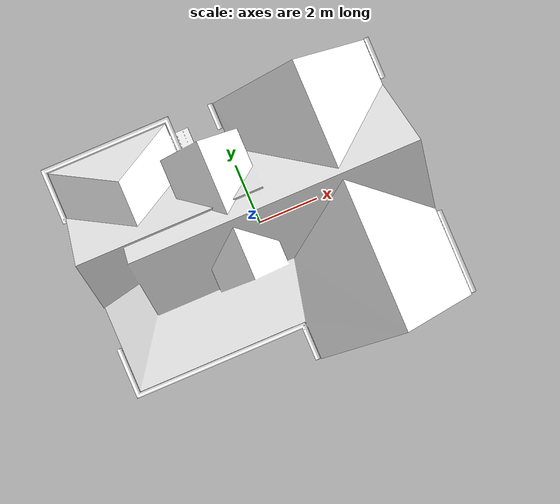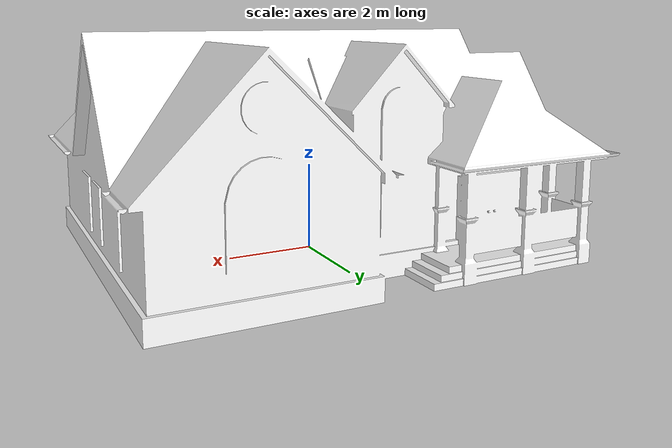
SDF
<?xml version="1.0"?>
<sdf version="1.4">
  <model name="House 1">
    <static>true</static>
    <link name="link">
      <collision name="collision">
        <geometry>
          <mesh>
            <uri>model://house_1/meshes/house_1.dae</uri>
          </mesh>
        </geometry>
      </collision>
      <visual name="visual">
        <geometry>
          <mesh>
            <uri>model://house_1/meshes/house_1.dae</uri>
          </mesh>
        </geometry>
        <material>
          <script>
            <uri>model://house_1/materials/scripts</uri>
            <uri>model://house_1/materials/textures</uri>
            <name>House_1/Diffuse</name>
          </script>

          <shader type="normal_map_object_space">
            <normal_map>House_1_Normal.png</normal_map>
          </shader>
        </material>
      </visual>
    </link>
  </model>
</sdf>
